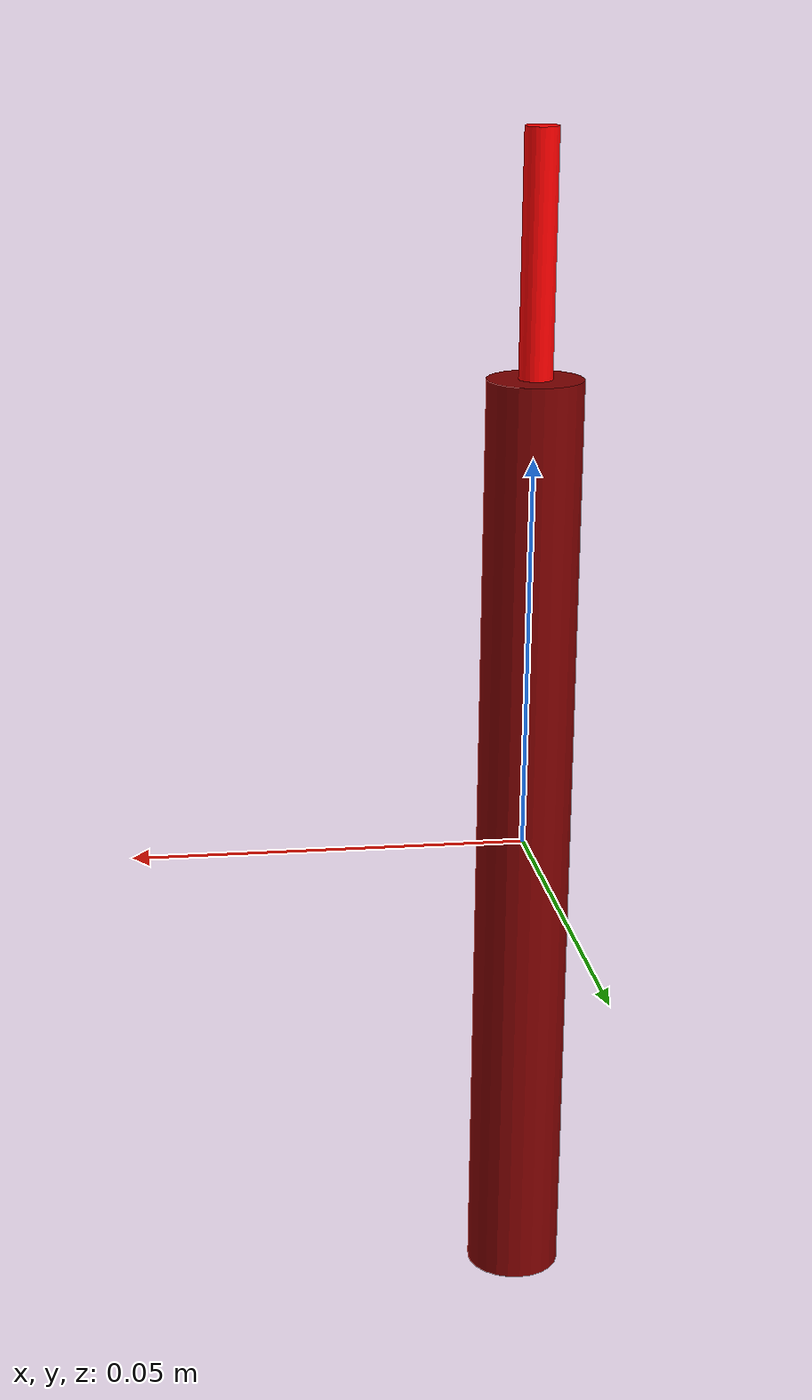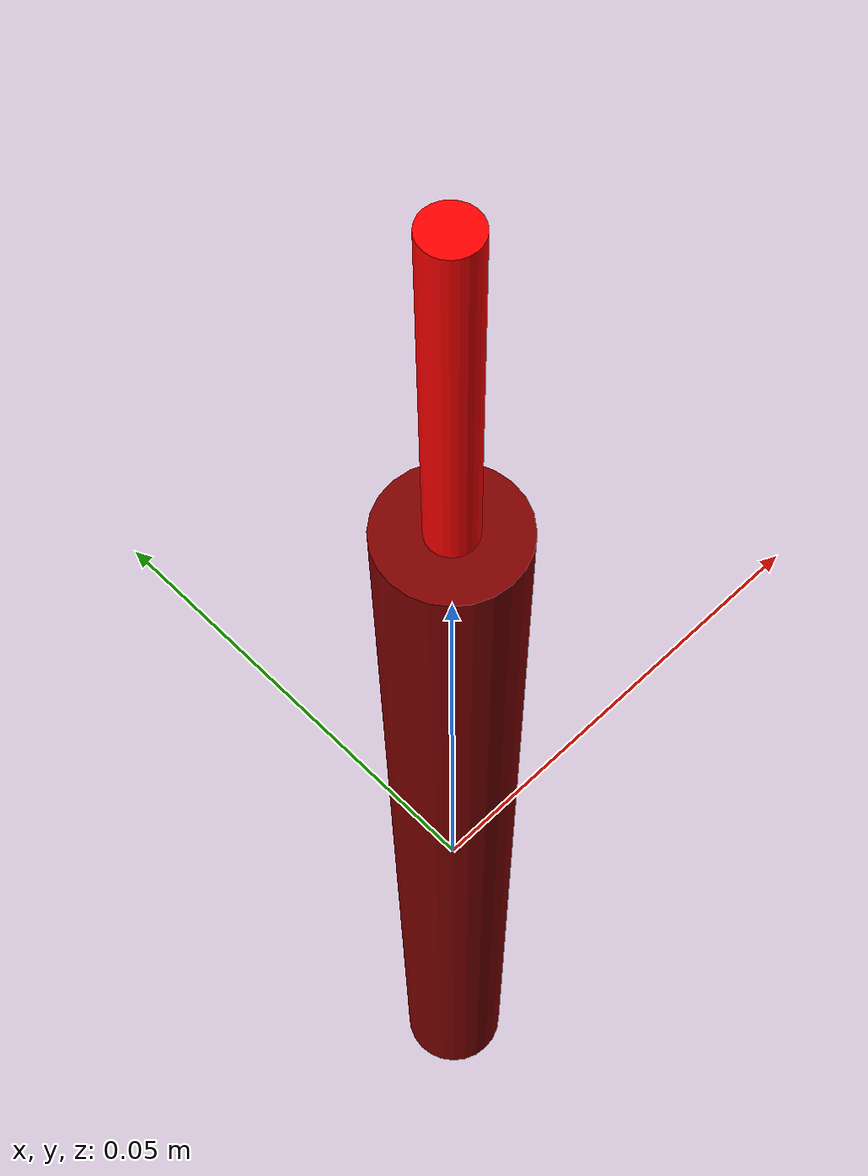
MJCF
<mujoco model="soft_object">
  <asset>
    <texture file="../textures/metal.png" type="2d" name="metal-tex"/>
    <material name="metal-material" reflectance="0.5" texrepeat="1 1" texture="metal-tex"/>
  </asset>
  <worldbody>
    <body>
        <body name="object" pos="0 0 0">
            <joint name="joint1" pos="0 0 0" axis="0 0 1" limited="true" range="-6.28319 6.28319" damping="0.001" frictionloss="0.01" />
            <site rgba="0 0 0 0" size="0.005" pos="0 0 -0.05" name="bottom_site"/>
            <geom rgba="0.5 0 0 1" margin="0.001" density="1" friction="1 0.01 0.001" solref="0.01 0.5" solimp="0.9 0.95 0.001" type="cylinder" size="0.006 0.06" pos="0 0 0" group="0" name="peg_g0"/>
            <body name="link2" pos="0 0 0.06">
                <joint name="joint2" pos="0 0 0" axis="0 0 1" limited="true" range="-6.28319 6.28319" damping="0.001" frictionloss="0.01" />
                <geom rgba="1 0 0 1" margin="0.001" density="1" friction="1 0.01 0.001" solref="0.01 0.5" solimp="0.9 0.95 0.001" type="cylinder" size="0.0021 0.03" pos="0 0 0" group="0" name="peg_g1"/>
            </body>
        </body>
    </body>
  </worldbody>
</mujoco>
